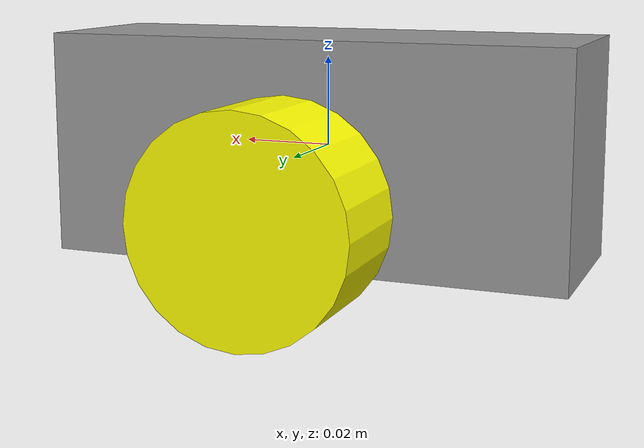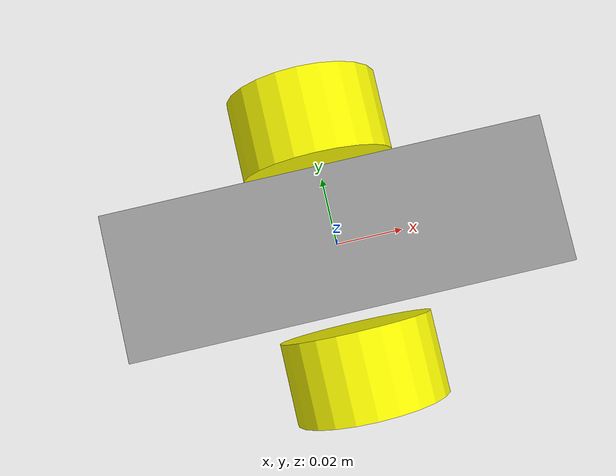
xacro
<?xml version="1.0"?>
<robot name="my_robot" xmlns:xacro="http://ros.org/wiki/xacro">
  <xacro:property name="prefix" value="" />

  <!-- Base link -->
  <link name="${prefix}base_link">
    <visual>
      <geometry>
        <box size="0.118 0.039 0.05" />
      </geometry>
      <material name="grey">
        <color rgba="0.6 0.6 0.6 1.0"/>
      </material>
    </visual>
    <collision>
      <geometry>
        <box size="0.118 0.039 0.05" />
      </geometry>
    </collision>
    <inertial>
      <mass value="0.5"/>
      <origin xyz="0 0 0" rpy="0 0 0"/>
      <inertia ixx="0.001" ixy="0.0" ixz="0.0" iyy="0.001" iyz="0.0" izz="0.001"/>
    </inertial>
  </link>

  <!-- Left wheel -->
  <link name="${prefix}left_wheel_link">
    <visual>
      <geometry>
        <cylinder radius="0.024" length="0.025" />
      </geometry>
      <material name="yellow">
        <color rgba="1.0 1.0 0.0 1.0"/>
      </material>
    </visual>
    <collision>
      <geometry>
        <cylinder radius="0.024" length="0.025" />
      </geometry>
    </collision>
    <inertial>
      <mass value="0.2"/>
      <inertia ixx="0.001" ixy="0.0" ixz="0.0" iyy="0.001" iyz="0.0" izz="0.001"/>
    </inertial>
  </link>

  <!-- Right wheel -->
  <link name="${prefix}right_wheel_link">
    <visual>
      <geometry>
        <cylinder radius="0.024" length="0.025" />
      </geometry>
      <material name="yellow"/>
    </visual>
    <collision>
      <geometry>
        <cylinder radius="0.024" length="0.025" />
      </geometry>
    </collision>
    <inertial>
      <mass value="0.2"/>
      <inertia ixx="0.001" ixy="0.0" ixz="0.0" iyy="0.001" iyz="0.0" izz="0.001"/>
    </inertial>
  </link>

  <!-- Joints -->
  <joint name="${prefix}left_wheel_joint" type="continuous">
    <parent link="${prefix}base_link"/>
    <child link="${prefix}left_wheel_link"/>
    <origin xyz="0 0.038 -0.010" rpy="1.57 0 0"/>
    <axis xyz="0 0 1"/>
  </joint>

  <joint name="${prefix}right_wheel_joint" type="continuous">
    <parent link="${prefix}base_link"/>
    <child link="${prefix}right_wheel_link"/>
    <origin xyz="0 -0.038 -0.010" rpy="1.57 0 0"/>
    <axis xyz="0 0 1"/>
  </joint>

  <!-- Gazebo wheel friction settings -->
  <gazebo reference="${prefix}left_wheel_joint">
    <mu1>1.0</mu1>
    <mu2>1.0</mu2>
    <kp>100000</kp>
    <kd>1.0</kd>
  </gazebo>

  <gazebo reference="${prefix}right_wheel_joint">
    <mu1>1.0</mu1>
    <mu2>1.0</mu2>
    <kp>100000</kp>
    <kd>1.0</kd>
  </gazebo>

  <!-- Gazebo differential drive plugin -->
  <gazebo>
    <plugin name="gazebo_ros_diff_drive" filename="libgazebo_ros_diff_drive.so">
      <ros>
        <namespace>/</namespace>
      </ros>
      <update_rate>50</update_rate>
      <left_joint>${prefix}left_wheel_joint</left_joint>
      <right_joint>${prefix}right_wheel_joint</right_joint>
      <wheel_separation>0.076</wheel_separation>
      <wheel_radius>0.024</wheel_radius>
      <command_topic>cmd_vel</command_topic>
      <odometry_topic>odom</odometry_topic>
      <odometry_frame>${prefix}odom</odometry_frame>
      <robot_base_frame>${prefix}base_link</robot_base_frame>
      <publish_tf>true</publish_tf>
    </plugin>
  </gazebo>

</robot>
